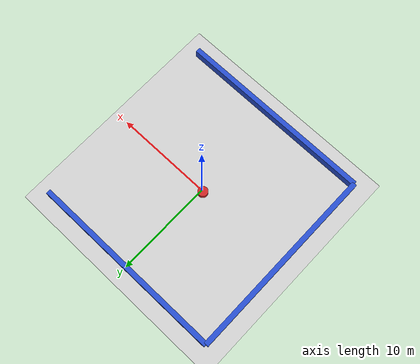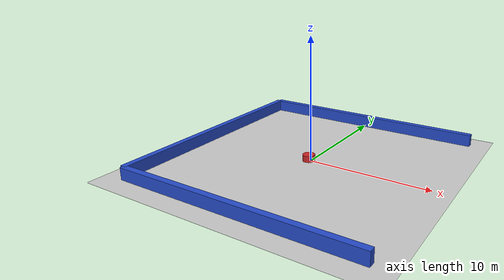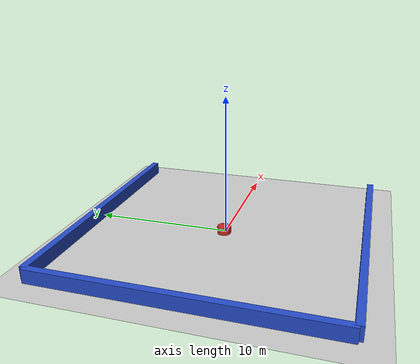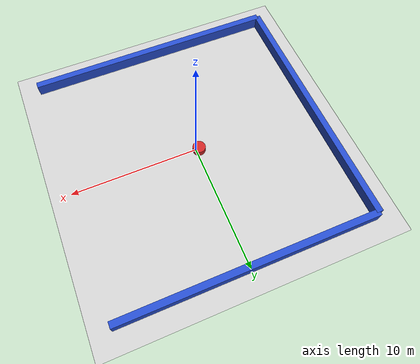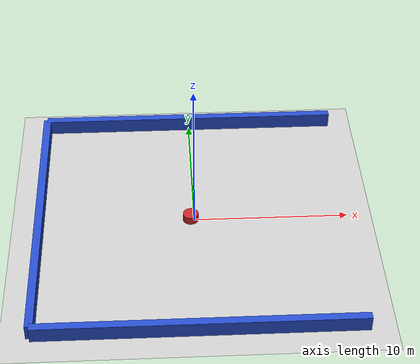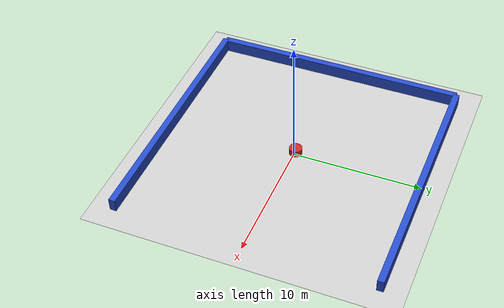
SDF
<?xml version="1.0" ?>
<sdf version="1.6">
   <world name="default">
    <model name="ground_plane">
      <static>1</static>
      <link name="link">
        <collision name="collision">
          <geometry><plane><normal>0 0 1</normal><size>100 100</size></plane></geometry>
          <surface><friction><ode><mu>100</mu><mu2>50</mu2></ode><torsional><ode/></torsional></friction><contact><ode/></contact></surface>
        </collision>
        <visual name="visual">
          <cast_shadows>0</cast_shadows>
          <geometry><plane><normal>0 0 1</normal><size>100 100</size></plane></geometry>
          <material><ambient>0.8 0.8 0.8 1</ambient><diffuse>0.8 0.8 0.8 1</diffuse><specular>0.01 0.01 0.01 1</specular></material>
        </visual>
      </link>
    </model>
    <light name="sun" type="directional">
      <cast_shadows>1</cast_shadows>
      <pose>0 0 10 0 0 0</pose>
      <diffuse>1 1 1 1</diffuse>
      <specular>0.1 0.1 0.1 1</specular>
      <attenuation><range>1000</range><constant>0.9</constant><linear>0.01</linear><quadratic>0.001</quadratic></attenuation>
      <direction>-0.5 0.5 -1</direction>
    </light>

    <model name='easylibobs_181'>
      <static>1</static>
      <pose frame=''>-0.225000 0.075000 0.000000 0.000000 0.000000 0.000000</pose>
      <link name='link'>
        <inertial>
          <mass>1</mass>
          <inertia>
            <ixx>0.145833</ixx>
            <ixy>0</ixy>
            <ixz>0</ixz>
            <iyy>0.145833</iyy>
            <iyz>0</iyz>
            <izz>0.125</izz>
          </inertia>
        </inertial>
        <collision name='collision'>
           <geometry>
            <cylinder>
                <radius>0.5000</radius>
                 <length> 1 </length>
            </cylinder>
          </geometry>
           <surface>
            <contact>
              <ode/>
            </contact>
            <bounce/>
            <friction>
              <torsional>
                <ode/>
              </torsional>
              <ode/>
            </friction>
          </surface>
        </collision>
        <visual name='visual'>
           <geometry>
            <cylinder>
                <radius>0.5000</radius>
                 <length> 1 </length>
            </cylinder>
          </geometry>
          <material>
            <script>
              <name>Gazebo/Red</name>
              <uri>file://media/materials/scripts/gazebo.material</uri>
            </script>
          </material>
        </visual>
        <self_collide>0</self_collide>
        <kinematic>0</kinematic>
        <gravity>1</gravity>
      </link>
      <plugin name='easylibobs_181' filename='easylibobs_181.so'/>
    </model>

    <model name='easylibobs_119'>
      <static>1</static>
      <pose frame=''>-0.225000 0.075000 0.000000 0.000000 0.000000 0.000000</pose>
      <link name='link'>
        <inertial>
          <mass>1</mass>
          <inertia>
            <ixx>0.145833</ixx>
            <ixy>0</ixy>
            <ixz>0</ixz>
            <iyy>0.145833</iyy>
            <iyz>0</iyz>
            <izz>0.125</izz>
          </inertia>
        </inertial>
        <collision name='collision'>
           <geometry>
            <cylinder>
                <radius>0.5000</radius>
                 <length> 1 </length>
            </cylinder>
          </geometry>
           <surface>
            <contact>
              <ode/>
            </contact>
            <bounce/>
            <friction>
              <torsional>
                <ode/>
              </torsional>
              <ode/>
            </friction>
          </surface>
        </collision>
        <visual name='visual'>
           <geometry>
            <cylinder>
                <radius>0.5000</radius>
                 <length> 1 </length>
            </cylinder>
          </geometry>
          <material>
            <script>
              <name>Gazebo/Red</name>
              <uri>file://media/materials/scripts/gazebo.material</uri>
            </script>
          </material>
        </visual>
        <self_collide>0</self_collide>
        <kinematic>0</kinematic>
        <gravity>1</gravity>
      </link>
      <plugin name='easylibobs_119' filename='easylibobs_119.so'/>
    </model>

    <model name='easylibobs_186'>
      <static>1</static>
      <pose frame=''>-0.225000 0.075000 0.000000 0.000000 0.000000 0.000000</pose>
      <link name='link'>
        <inertial>
          <mass>1</mass>
          <inertia>
            <ixx>0.145833</ixx>
            <ixy>0</ixy>
            <ixz>0</ixz>
            <iyy>0.145833</iyy>
            <iyz>0</iyz>
            <izz>0.125</izz>
          </inertia>
        </inertial>
        <collision name='collision'>
           <geometry>
            <cylinder>
                <radius>0.5000</radius>
                 <length> 1 </length>
            </cylinder>
          </geometry>
           <surface>
            <contact>
              <ode/>
            </contact>
            <bounce/>
            <friction>
              <torsional>
                <ode/>
              </torsional>
              <ode/>
            </friction>
          </surface>
        </collision>
        <visual name='visual'>
           <geometry>
            <cylinder>
                <radius>0.5000</radius>
                 <length> 1 </length>
            </cylinder>
          </geometry>
          <material>
            <script>
              <name>Gazebo/Red</name>
              <uri>file://media/materials/scripts/gazebo.material</uri>
            </script>
          </material>
        </visual>
        <self_collide>0</self_collide>
        <kinematic>0</kinematic>
        <gravity>1</gravity>
      </link>
      <plugin name='easylibobs_186' filename='easylibobs_186.so'/>
    </model>

    <model name='easylibobs_92'>
      <static>1</static>
      <pose frame=''>-0.225000 0.075000 0.000000 0.000000 0.000000 0.000000</pose>
      <link name='link'>
        <inertial>
          <mass>1</mass>
          <inertia>
            <ixx>0.145833</ixx>
            <ixy>0</ixy>
            <ixz>0</ixz>
            <iyy>0.145833</iyy>
            <iyz>0</iyz>
            <izz>0.125</izz>
          </inertia>
        </inertial>
        <collision name='collision'>
           <geometry>
            <cylinder>
                <radius>0.5000</radius>
                 <length> 1 </length>
            </cylinder>
          </geometry>
           <surface>
            <contact>
              <ode/>
            </contact>
            <bounce/>
            <friction>
              <torsional>
                <ode/>
              </torsional>
              <ode/>
            </friction>
          </surface>
        </collision>
        <visual name='visual'>
           <geometry>
            <cylinder>
                <radius>0.5000</radius>
                 <length> 1 </length>
            </cylinder>
          </geometry>
          <material>
            <script>
              <name>Gazebo/Red</name>
              <uri>file://media/materials/scripts/gazebo.material</uri>
            </script>
          </material>
        </visual>
        <self_collide>0</self_collide>
        <kinematic>0</kinematic>
        <gravity>1</gravity>
      </link>
      <plugin name='easylibobs_92' filename='easylibobs_92.so'/>
    </model>

    <model name='easylibobs_120'>
      <static>1</static>
      <pose frame=''>-0.225000 0.075000 0.000000 0.000000 0.000000 0.000000</pose>
      <link name='link'>
        <inertial>
          <mass>1</mass>
          <inertia>
            <ixx>0.145833</ixx>
            <ixy>0</ixy>
            <ixz>0</ixz>
            <iyy>0.145833</iyy>
            <iyz>0</iyz>
            <izz>0.125</izz>
          </inertia>
        </inertial>
        <collision name='collision'>
           <geometry>
            <cylinder>
                <radius>0.5000</radius>
                 <length> 1 </length>
            </cylinder>
          </geometry>
           <surface>
            <contact>
              <ode/>
            </contact>
            <bounce/>
            <friction>
              <torsional>
                <ode/>
              </torsional>
              <ode/>
            </friction>
          </surface>
        </collision>
        <visual name='visual'>
           <geometry>
            <cylinder>
                <radius>0.5000</radius>
                 <length> 1 </length>
            </cylinder>
          </geometry>
          <material>
            <script>
              <name>Gazebo/Red</name>
              <uri>file://media/materials/scripts/gazebo.material</uri>
            </script>
          </material>
        </visual>
        <self_collide>0</self_collide>
        <kinematic>0</kinematic>
        <gravity>1</gravity>
      </link>
      <plugin name='easylibobs_120' filename='easylibobs_120.so'/>
    </model>

    <model name='easylibobs_146'>
      <static>1</static>
      <pose frame=''>-0.225000 0.075000 0.000000 0.000000 0.000000 0.000000</pose>
      <link name='link'>
        <inertial>
          <mass>1</mass>
          <inertia>
            <ixx>0.145833</ixx>
            <ixy>0</ixy>
            <ixz>0</ixz>
            <iyy>0.145833</iyy>
            <iyz>0</iyz>
            <izz>0.125</izz>
          </inertia>
        </inertial>
        <collision name='collision'>
           <geometry>
            <cylinder>
                <radius>0.5000</radius>
                 <length> 1 </length>
            </cylinder>
          </geometry>
           <surface>
            <contact>
              <ode/>
            </contact>
            <bounce/>
            <friction>
              <torsional>
                <ode/>
              </torsional>
              <ode/>
            </friction>
          </surface>
        </collision>
        <visual name='visual'>
           <geometry>
            <cylinder>
                <radius>0.5000</radius>
                 <length> 1 </length>
            </cylinder>
          </geometry>
          <material>
            <script>
              <name>Gazebo/Red</name>
              <uri>file://media/materials/scripts/gazebo.material</uri>
            </script>
          </material>
        </visual>
        <self_collide>0</self_collide>
        <kinematic>0</kinematic>
        <gravity>1</gravity>
      </link>
      <plugin name='easylibobs_146' filename='easylibobs_146.so'/>
    </model>

    <model name='easylibobs_65'>
      <static>1</static>
      <pose frame=''>-0.225000 0.075000 0.000000 0.000000 0.000000 0.000000</pose>
      <link name='link'>
        <inertial>
          <mass>1</mass>
          <inertia>
            <ixx>0.145833</ixx>
            <ixy>0</ixy>
            <ixz>0</ixz>
            <iyy>0.145833</iyy>
            <iyz>0</iyz>
            <izz>0.125</izz>
          </inertia>
        </inertial>
        <collision name='collision'>
           <geometry>
            <cylinder>
                <radius>0.5000</radius>
                 <length> 1 </length>
            </cylinder>
          </geometry>
           <surface>
            <contact>
              <ode/>
            </contact>
            <bounce/>
            <friction>
              <torsional>
                <ode/>
              </torsional>
              <ode/>
            </friction>
          </surface>
        </collision>
        <visual name='visual'>
           <geometry>
            <cylinder>
                <radius>0.5000</radius>
                 <length> 1 </length>
            </cylinder>
          </geometry>
          <material>
            <script>
              <name>Gazebo/Red</name>
              <uri>file://media/materials/scripts/gazebo.material</uri>
            </script>
          </material>
        </visual>
        <self_collide>0</self_collide>
        <kinematic>0</kinematic>
        <gravity>1</gravity>
      </link>
      <plugin name='easylibobs_65' filename='easylibobs_65.so'/>
    </model>

    <model name='easylibobs_111'>
      <static>1</static>
      <pose frame=''>-0.225000 0.075000 0.000000 0.000000 0.000000 0.000000</pose>
      <link name='link'>
        <inertial>
          <mass>1</mass>
          <inertia>
            <ixx>0.145833</ixx>
            <ixy>0</ixy>
            <ixz>0</ixz>
            <iyy>0.145833</iyy>
            <iyz>0</iyz>
            <izz>0.125</izz>
          </inertia>
        </inertial>
        <collision name='collision'>
           <geometry>
            <cylinder>
                <radius>0.5000</radius>
                 <length> 1 </length>
            </cylinder>
          </geometry>
           <surface>
            <contact>
              <ode/>
            </contact>
            <bounce/>
            <friction>
              <torsional>
                <ode/>
              </torsional>
              <ode/>
            </friction>
          </surface>
        </collision>
        <visual name='visual'>
           <geometry>
            <cylinder>
                <radius>0.5000</radius>
                 <length> 1 </length>
            </cylinder>
          </geometry>
          <material>
            <script>
              <name>Gazebo/Red</name>
              <uri>file://media/materials/scripts/gazebo.material</uri>
            </script>
          </material>
        </visual>
        <self_collide>0</self_collide>
        <kinematic>0</kinematic>
        <gravity>1</gravity>
      </link>
      <plugin name='easylibobs_111' filename='easylibobs_111.so'/>
    </model>

    <model name='easylibobs_12'>
      <static>1</static>
      <pose frame=''>-0.225000 0.075000 0.000000 0.000000 0.000000 0.000000</pose>
      <link name='link'>
        <inertial>
          <mass>1</mass>
          <inertia>
            <ixx>0.145833</ixx>
            <ixy>0</ixy>
            <ixz>0</ixz>
            <iyy>0.145833</iyy>
            <iyz>0</iyz>
            <izz>0.125</izz>
          </inertia>
        </inertial>
        <collision name='collision'>
           <geometry>
            <cylinder>
                <radius>0.5000</radius>
                 <length> 1 </length>
            </cylinder>
          </geometry>
           <surface>
            <contact>
              <ode/>
            </contact>
            <bounce/>
            <friction>
              <torsional>
                <ode/>
              </torsional>
              <ode/>
            </friction>
          </surface>
        </collision>
        <visual name='visual'>
           <geometry>
            <cylinder>
                <radius>0.5000</radius>
                 <length> 1 </length>
            </cylinder>
          </geometry>
          <material>
            <script>
              <name>Gazebo/Red</name>
              <uri>file://media/materials/scripts/gazebo.material</uri>
            </script>
          </material>
        </visual>
        <self_collide>0</self_collide>
        <kinematic>0</kinematic>
        <gravity>1</gravity>
      </link>
      <plugin name='easylibobs_12' filename='easylibobs_12.so'/>
    </model>

      <model name="back_wall">
      <static>1</static>\   <pose>-10 0 .5 0 0 0</pose>        <link name="box_link">

	<collision name='collision'>
            <geometry>
              <box>
                <size>.5 20 1</size>
              </box>
            </geometry>
           <surface>
            <contact>
              <ode/>
            </contact>
            <bounce/>
            <friction>
              <torsional>
                <ode/>
              </torsional>
              <ode/>
            </friction>
          </surface>
        </collision>

          <visual name="visual">
            <geometry>
              <box>
                <size>.5 20 1</size>
              </box>
            </geometry>
          <material>
                 <script>
                     <name>Gazebo/Blue</name>
                         <uri>file://media/materials/scripts/gazebo.material</uri>
                         </script>
                     </material>
          </visual>
        </link>
      </model>
      <model name="top_wall">
      <static>1</static>
       <pose>0 10 .5 0 0 0</pose>        <link name="box_link">

	<collision name='collision'>
           <geometry>
              <box>
                <size>20 .5 1</size>
              </box>
            </geometry>
           <surface>
            <contact>
              <ode/>
            </contact>
            <bounce/>
            <friction>
              <torsional>
                <ode/>
              </torsional>
              <ode/>
            </friction>
          </surface>
        </collision>
          <visual name="visual">
            <geometry>
              <box>
                <size>20 .5 1</size>
              </box>
            </geometry>
          <material>
                 <script>
                     <name>Gazebo/Blue</name>
                         <uri>file://media/materials/scripts/gazebo.material</uri>
                         </script>
                     </material>
          </visual>
        </link>
      </model>
      <model name="bottom_wall">
      <static>1</static>
       <pose>0 -10 .5 0 0 0</pose>        <link name="box_link">
	<collision name='collision'>
            <geometry>
              <box>
                <size>20 .5 1</size>
              </box>
            </geometry>
           <surface>
            <contact>
              <ode/>
            </contact>
            <bounce/>
            <friction>
              <torsional>
                <ode/>
              </torsional>
              <ode/>
            </friction>
          </surface>
        </collision>
          <visual name="visual">
            <geometry>
              <box>
                <size>20 .5 1</size>
              </box>
            </geometry>
          <material>
                 <script>
                     <name>Gazebo/Blue</name>
                         <uri>file://media/materials/scripts/gazebo.material</uri>
                         </script>
                     </material>
          </visual>
        </link>
      </model>
   </world>
</sdf>
